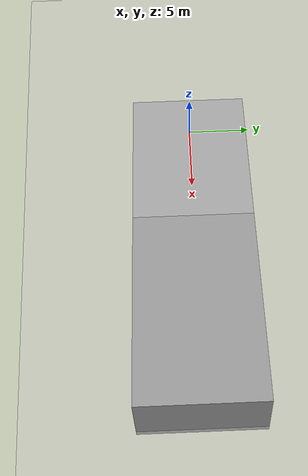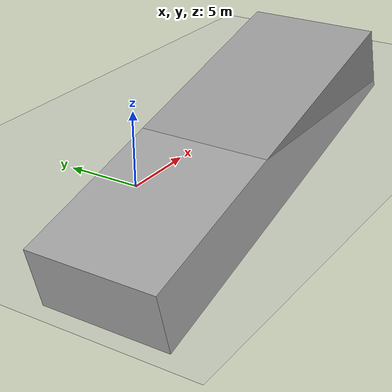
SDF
<?xml version="1.0" ?>
<sdf version="1.6">
  <!-- Robustness world for evaluating tracking under a sustained 15-degree slope. -->
  <world name="incline_world">
    <!-- Match the nominal-world solver for non-formal diagnostic use. -->
    <physics name="benchmark_ode" type="ode" default="true">
      <max_step_size>0.001</max_step_size>
      <real_time_factor>1.0</real_time_factor>
      <real_time_update_rate>1000</real_time_update_rate>
      <ode>
        <solver><type>quick</type><iters>50</iters><sor>1.3</sor></solver>
        <constraints>
          <cfm>0.0</cfm><erp>0.2</erp>
          <contact_max_correcting_vel>100.0</contact_max_correcting_vel>
          <contact_surface_layer>0.001</contact_surface_layer>
        </constraints>
      </ode>
    </physics>
    <include>
      <uri>model://sun</uri>
    </include>
    <include>
      <uri>model://ground_plane</uri>
    </include>

    <!-- A large static box is pitched by -0.2617 rad (approximately -15 deg).
         Its dimensions place the top surface across the robot's forward path. -->
    <model name="test_ramp">
      <static>true</static>
      <pose>10 0 -2.0 0 -0.2617 0</pose>
      <link name="ramp_link">
        <collision name="collision">
          <geometry>
            <box>
              <size>30 10 5</size>
            </box>
          </geometry>
          <!-- Higher friction prevents the ramp test from becoming a pure
               wheel-slip test; low-friction behavior should use a separate map. -->
          <surface>
            <friction>
              <ode>
                <mu>1.0</mu>
                <mu2>1.0</mu2>
              </ode>
            </friction>
          </surface>
        </collision>
        <visual name="visual">
          <geometry>
            <box>
              <size>30 10 5</size>
            </box>
          </geometry>
          <!-- Visual material affects rendering only, not contact physics. -->
          <material>
            <script>
              <name>Gazebo/Grey</name>
              <uri>file://media/materials/scripts/gazebo.material</uri>
            </script>
          </material>
        </visual>
      </link>
    </model>
  </world>
</sdf>
